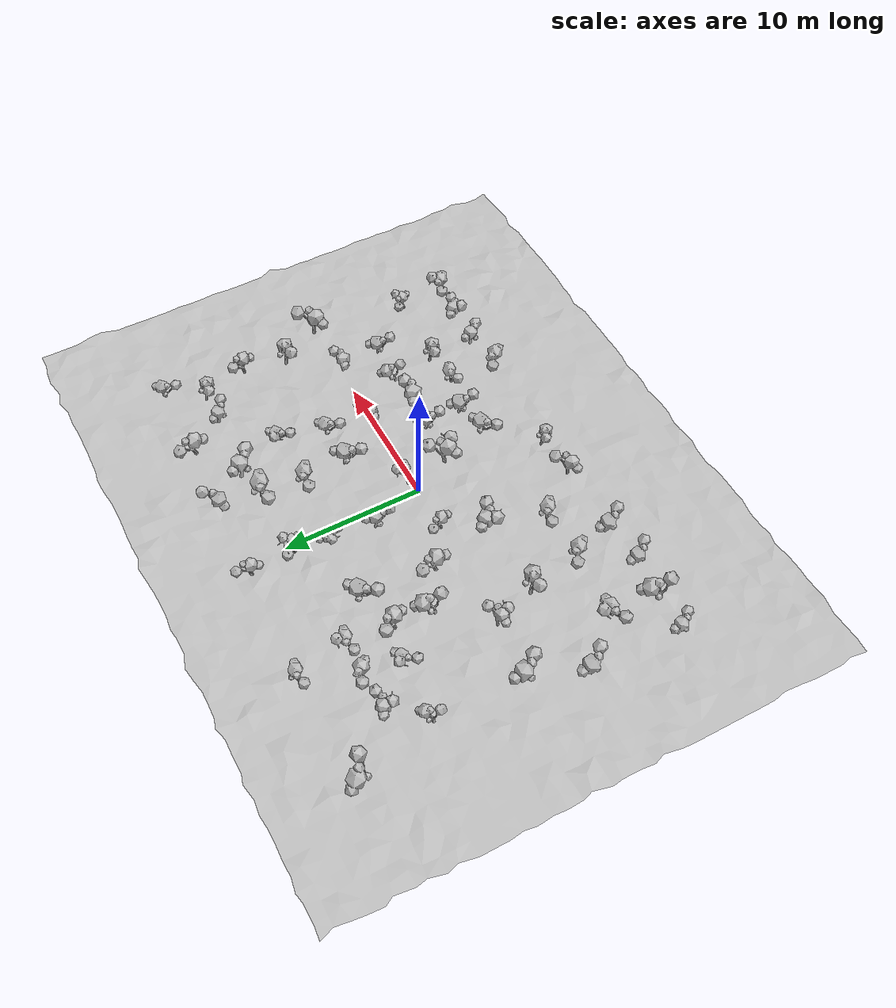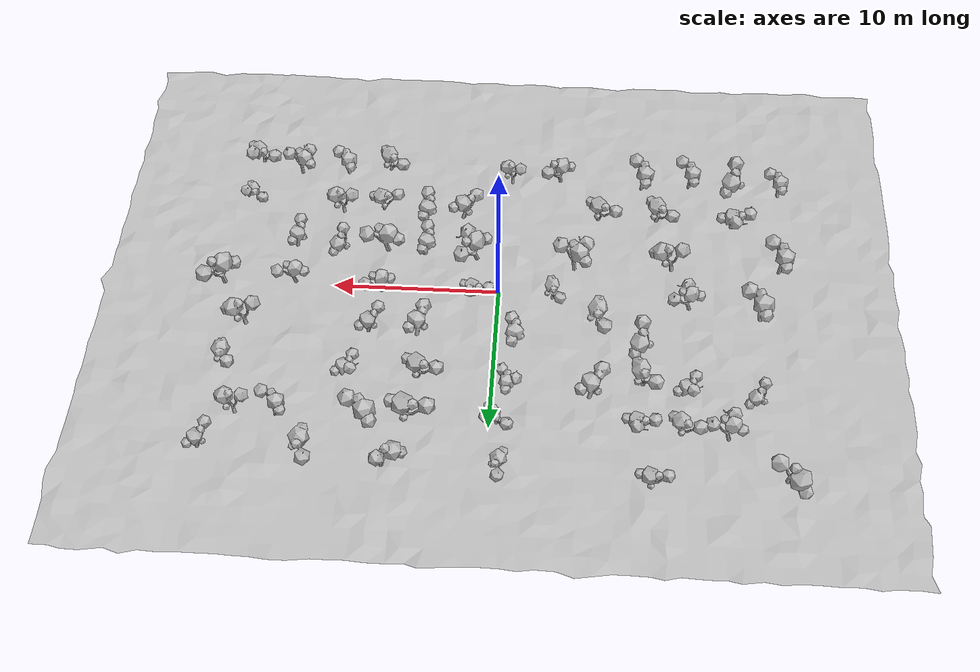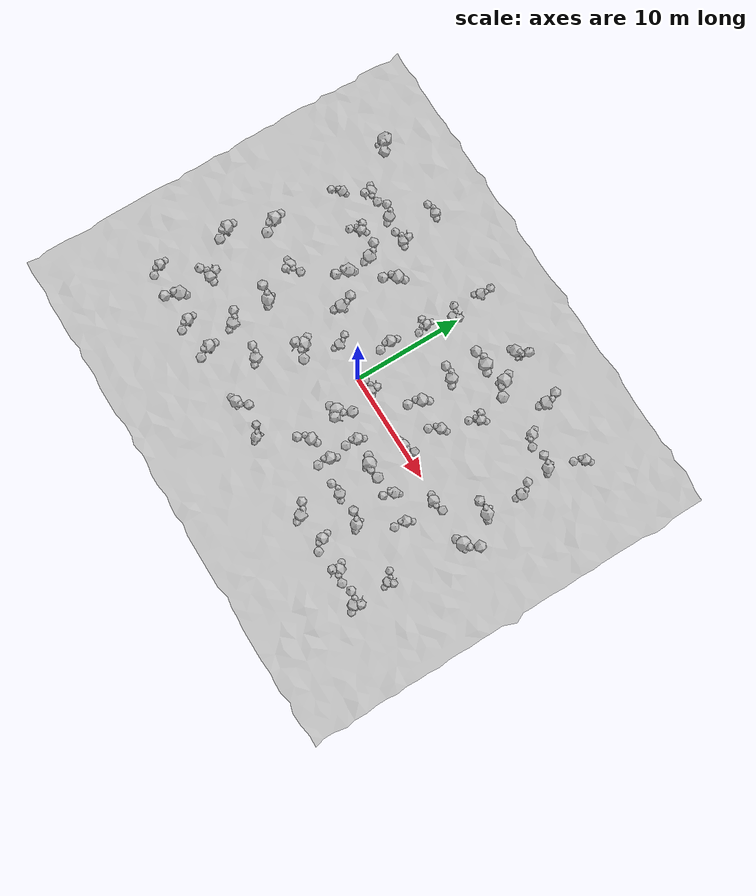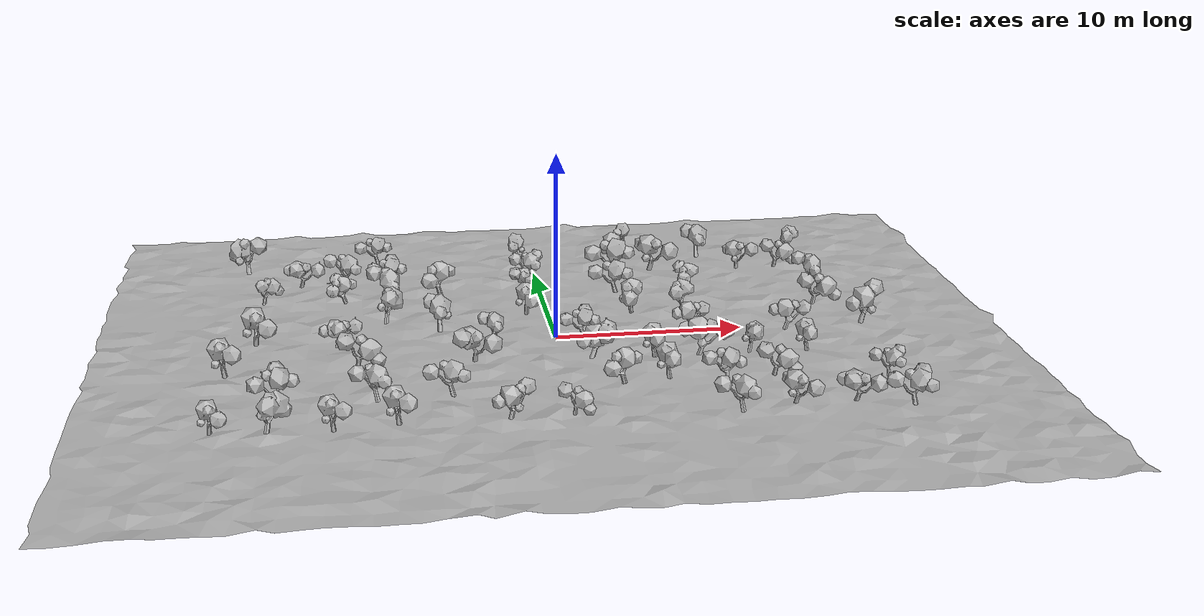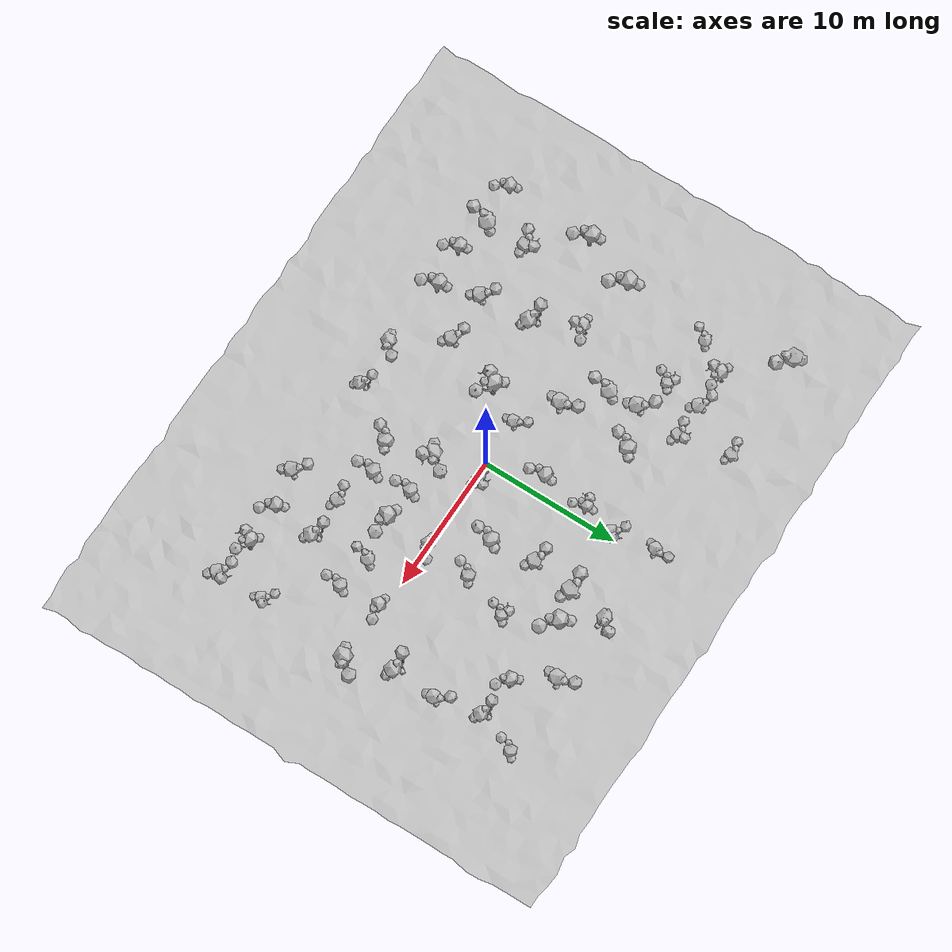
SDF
<?xml version='1.0' encoding='ASCII'?>
<sdf version='1.4'>
  <world name='procedural_orchard'>

    <spherical_coordinates>
      <surface_model>EARTH_WGS84</surface_model>
      <latitude_deg>37.335</latitude_deg>
      <longitude_deg>-121.881</longitude_deg>
      <elevation>0.0</elevation>
      <heading_deg>0</heading_deg>
    </spherical_coordinates>

    <physics type='ode'>
      <max_step_size>0.003</max_step_size>
      <real_time_factor>1.0</real_time_factor>
      <gravity>0 0 -9.8</gravity>
    </physics>
    <plugin name='gz::sim::systems::Physics' filename='libgz-sim-physics-system.so'/>
    <plugin name='gz::sim::systems::UserCommands' filename='libgz-sim-user-commands-system.so'/>
    <plugin name='gz::sim::systems::SceneBroadcaster' filename='libgz-sim-scene-broadcaster-system.so'/>
    <plugin name='gz::sim::systems::Sensors' filename='libgz-sim-sensors-system.so'>
      <render_engine>ogre2</render_engine>
    </plugin>
    <plugin name='gz::sim::systems::Imu' filename='libgz-sim-imu-system.so'/>
    <plugin name='gz::sim::systems::NavSat' filename='libgz-sim-navsat-system.so'/>
    <scene>
      <ambient>1 1 1 1</ambient>
      <background>0.3 0.7 0.9 1</background>
      <shadows>1</shadows>
      <sky><clouds><speed>12</speed></clouds></sky>
    </scene>
    <light name='sun' type='directional'>
      <cast_shadows>1</cast_shadows>
      <pose>0 0 10 0 -0 0</pose>
      <diffuse>1.0 1.0 1.0 1</diffuse>
      <specular>0.2 0.2 0.2 1</specular>
      <direction>-0.5 0.5 -1.0</direction>
    </light>

    <model name='orchard_ground'>
      <static>true</static>
      <pose>0 0 0 0 0 0</pose>
      <link name='link'>
        <collision name='col'><geometry><mesh><uri>model://orchard/orchard_world.dae</uri></mesh></geometry></collision>
        <visual name='vis'><geometry><mesh><uri>model://orchard/orchard_world.dae</uri></mesh></geometry></visual>
      </link>
    </model>

    <model name='tree_0'>
      <static>true</static>
      <pose>13.450 -10.100 0 0 0 0.759</pose>
      <link name='link'>
        <visual name='visual'>
          <geometry><mesh>
            <uri>model://orchard/orchard_tree_5.dae</uri>
            <scale>1.423 1.423 1.423</scale>
          </mesh></geometry>
        </visual>
        <collision name='trunk_collision'>
          <pose>0 0 0.5 0 0 0</pose>
          <geometry>
            <cylinder>
              <radius>0.2</radius>
              <length>1.0</length>
            </cylinder>
          </geometry>
        </collision>
      </link>
    </model>

    <model name='tree_1'>
      <static>true</static>
      <pose>7.350 -10.000 0 0 0 4.706</pose>
      <link name='link'>
        <visual name='visual'>
          <geometry><mesh>
            <uri>model://orchard/orchard_tree_1.dae</uri>
            <scale>1.448 1.448 1.448</scale>
          </mesh></geometry>
        </visual>
        <collision name='trunk_collision'>
          <pose>0 0 0.5 0 0 0</pose>
          <geometry>
            <cylinder>
              <radius>0.2</radius>
              <length>1.0</length>
            </cylinder>
          </geometry>
        </collision>
      </link>
    </model>

    <model name='tree_3'>
      <static>true</static>
      <pose>15.850 -10.200 0 0 0 3.896</pose>
      <link name='link'>
        <visual name='visual'>
          <geometry><mesh>
            <uri>model://orchard/orchard_tree_5.dae</uri>
            <scale>1.456 1.456 1.456</scale>
          </mesh></geometry>
        </visual>
        <collision name='trunk_collision'>
          <pose>0 0 0.5 0 0 0</pose>
          <geometry>
            <cylinder>
              <radius>0.2</radius>
              <length>1.0</length>
            </cylinder>
          </geometry>
        </collision>
      </link>
    </model>

    <model name='tree_4'>
      <static>true</static>
      <pose>-11.750 -10.000 0 0 0 5.970</pose>
      <link name='link'>
        <visual name='visual'>
          <geometry><mesh>
            <uri>model://orchard/orchard_tree_4.dae</uri>
            <scale>1.395 1.395 1.395</scale>
          </mesh></geometry>
        </visual>
        <collision name='trunk_collision'>
          <pose>0 0 0.5 0 0 0</pose>
          <geometry>
            <cylinder>
              <radius>0.2</radius>
              <length>1.0</length>
            </cylinder>
          </geometry>
        </collision>
      </link>
    </model>

    <model name='tree_5'>
      <static>true</static>
      <pose>10.450 -10.100 0 0 0 1.365</pose>
      <link name='link'>
        <visual name='visual'>
          <geometry><mesh>
            <uri>model://orchard/orchard_tree_1.dae</uri>
            <scale>1.397 1.397 1.397</scale>
          </mesh></geometry>
        </visual>
        <collision name='trunk_collision'>
          <pose>0 0 0.5 0 0 0</pose>
          <geometry>
            <cylinder>
              <radius>0.2</radius>
              <length>1.0</length>
            </cylinder>
          </geometry>
        </collision>
      </link>
    </model>

    <model name='tree_7'>
      <static>true</static>
      <pose>-0.350 -9.700 0 0 0 4.130</pose>
      <link name='link'>
        <visual name='visual'>
          <geometry><mesh>
            <uri>model://orchard/orchard_tree_3.dae</uri>
            <scale>1.257 1.257 1.257</scale>
          </mesh></geometry>
        </visual>
        <collision name='trunk_collision'>
          <pose>0 0 0.5 0 0 0</pose>
          <geometry>
            <cylinder>
              <radius>0.2</radius>
              <length>1.0</length>
            </cylinder>
          </geometry>
        </collision>
      </link>
    </model>

    <model name='tree_8'>
      <static>true</static>
      <pose>-14.550 -9.700 0 0 0 6.032</pose>
      <link name='link'>
        <visual name='visual'>
          <geometry><mesh>
            <uri>model://orchard/orchard_tree_3.dae</uri>
            <scale>1.661 1.661 1.661</scale>
          </mesh></geometry>
        </visual>
        <collision name='trunk_collision'>
          <pose>0 0 0.5 0 0 0</pose>
          <geometry>
            <cylinder>
              <radius>0.2</radius>
              <length>1.0</length>
            </cylinder>
          </geometry>
        </collision>
      </link>
    </model>

    <model name='tree_9'>
      <static>true</static>
      <pose>-17.250 -9.700 0 0 0 1.209</pose>
      <link name='link'>
        <visual name='visual'>
          <geometry><mesh>
            <uri>model://orchard/orchard_tree_1.dae</uri>
            <scale>1.330 1.330 1.330</scale>
          </mesh></geometry>
        </visual>
        <collision name='trunk_collision'>
          <pose>0 0 0.5 0 0 0</pose>
          <geometry>
            <cylinder>
              <radius>0.2</radius>
              <length>1.0</length>
            </cylinder>
          </geometry>
        </collision>
      </link>
    </model>

    <model name='tree_10'>
      <static>true</static>
      <pose>-3.250 -9.800 0 0 0 1.377</pose>
      <link name='link'>
        <visual name='visual'>
          <geometry><mesh>
            <uri>model://orchard/orchard_tree_4.dae</uri>
            <scale>1.441 1.441 1.441</scale>
          </mesh></geometry>
        </visual>
        <collision name='trunk_collision'>
          <pose>0 0 0.5 0 0 0</pose>
          <geometry>
            <cylinder>
              <radius>0.2</radius>
              <length>1.0</length>
            </cylinder>
          </geometry>
        </collision>
      </link>
    </model>

    <model name='tree_11'>
      <static>true</static>
      <pose>-8.750 -9.700 0 0 0 5.846</pose>
      <link name='link'>
        <visual name='visual'>
          <geometry><mesh>
            <uri>model://orchard/orchard_tree_4.dae</uri>
            <scale>1.516 1.516 1.516</scale>
          </mesh></geometry>
        </visual>
        <collision name='trunk_collision'>
          <pose>0 0 0.5 0 0 0</pose>
          <geometry>
            <cylinder>
              <radius>0.2</radius>
              <length>1.0</length>
            </cylinder>
          </geometry>
        </collision>
      </link>
    </model>

    <model name='tree_12'>
      <static>true</static>
      <pose>15.850 -6.800 0 0 0 3.561</pose>
      <link name='link'>
        <visual name='visual'>
          <geometry><mesh>
            <uri>model://orchard/orchard_tree_5.dae</uri>
            <scale>1.180 1.180 1.180</scale>
          </mesh></geometry>
        </visual>
        <collision name='trunk_collision'>
          <pose>0 0 0.5 0 0 0</pose>
          <geometry>
            <cylinder>
              <radius>0.2</radius>
              <length>1.0</length>
            </cylinder>
          </geometry>
        </collision>
      </link>
    </model>

    <model name='tree_13'>
      <static>true</static>
      <pose>2.250 -6.500 0 0 0 6.213</pose>
      <link name='link'>
        <visual name='visual'>
          <geometry><mesh>
            <uri>model://orchard/orchard_tree_1.dae</uri>
            <scale>1.491 1.491 1.491</scale>
          </mesh></geometry>
        </visual>
        <collision name='trunk_collision'>
          <pose>0 0 0.5 0 0 0</pose>
          <geometry>
            <cylinder>
              <radius>0.2</radius>
              <length>1.0</length>
            </cylinder>
          </geometry>
        </collision>
      </link>
    </model>

    <model name='tree_14'>
      <static>true</static>
      <pose>10.250 -6.500 0 0 0 4.363</pose>
      <link name='link'>
        <visual name='visual'>
          <geometry><mesh>
            <uri>model://orchard/orchard_tree_3.dae</uri>
            <scale>1.434 1.434 1.434</scale>
          </mesh></geometry>
        </visual>
        <collision name='trunk_collision'>
          <pose>0 0 0.5 0 0 0</pose>
          <geometry>
            <cylinder>
              <radius>0.2</radius>
              <length>1.0</length>
            </cylinder>
          </geometry>
        </collision>
      </link>
    </model>

    <model name='tree_15'>
      <static>true</static>
      <pose>7.550 -6.600 0 0 0 3.894</pose>
      <link name='link'>
        <visual name='visual'>
          <geometry><mesh>
            <uri>model://orchard/orchard_tree_4.dae</uri>
            <scale>1.333 1.333 1.333</scale>
          </mesh></geometry>
        </visual>
        <collision name='trunk_collision'>
          <pose>0 0 0.5 0 0 0</pose>
          <geometry>
            <cylinder>
              <radius>0.2</radius>
              <length>1.0</length>
            </cylinder>
          </geometry>
        </collision>
      </link>
    </model>

    <model name='tree_16'>
      <static>true</static>
      <pose>-9.850 -6.400 0 0 0 4.745</pose>
      <link name='link'>
        <visual name='visual'>
          <geometry><mesh>
            <uri>model://orchard/orchard_tree_1.dae</uri>
            <scale>1.465 1.465 1.465</scale>
          </mesh></geometry>
        </visual>
        <collision name='trunk_collision'>
          <pose>0 0 0.5 0 0 0</pose>
          <geometry>
            <cylinder>
              <radius>0.2</radius>
              <length>1.0</length>
            </cylinder>
          </geometry>
        </collision>
      </link>
    </model>

    <model name='tree_17'>
      <static>true</static>
      <pose>4.750 -6.000 0 0 0 5.396</pose>
      <link name='link'>
        <visual name='visual'>
          <geometry><mesh>
            <uri>model://orchard/orchard_tree_4.dae</uri>
            <scale>1.456 1.456 1.456</scale>
          </mesh></geometry>
        </visual>
        <collision name='trunk_collision'>
          <pose>0 0 0.5 0 0 0</pose>
          <geometry>
            <cylinder>
              <radius>0.2</radius>
              <length>1.0</length>
            </cylinder>
          </geometry>
        </collision>
      </link>
    </model>

    <model name='tree_18'>
      <static>true</static>
      <pose>-6.250 -6.400 0 0 0 5.059</pose>
      <link name='link'>
        <visual name='visual'>
          <geometry><mesh>
            <uri>model://orchard/orchard_tree_1.dae</uri>
            <scale>1.430 1.430 1.430</scale>
          </mesh></geometry>
        </visual>
        <collision name='trunk_collision'>
          <pose>0 0 0.5 0 0 0</pose>
          <geometry>
            <cylinder>
              <radius>0.2</radius>
              <length>1.0</length>
            </cylinder>
          </geometry>
        </collision>
      </link>
    </model>

    <model name='tree_19'>
      <static>true</static>
      <pose>-14.650 -6.200 0 0 0 4.654</pose>
      <link name='link'>
        <visual name='visual'>
          <geometry><mesh>
            <uri>model://orchard/orchard_tree_5.dae</uri>
            <scale>1.486 1.486 1.486</scale>
          </mesh></geometry>
        </visual>
        <collision name='trunk_collision'>
          <pose>0 0 0.5 0 0 0</pose>
          <geometry>
            <cylinder>
              <radius>0.2</radius>
              <length>1.0</length>
            </cylinder>
          </geometry>
        </collision>
      </link>
    </model>

    <model name='tree_20'>
      <static>true</static>
      <pose>7.450 -3.300 0 0 0 2.180</pose>
      <link name='link'>
        <visual name='visual'>
          <geometry><mesh>
            <uri>model://orchard/orchard_tree_1.dae</uri>
            <scale>1.686 1.686 1.686</scale>
          </mesh></geometry>
        </visual>
        <collision name='trunk_collision'>
          <pose>0 0 0.5 0 0 0</pose>
          <geometry>
            <cylinder>
              <radius>0.2</radius>
              <length>1.0</length>
            </cylinder>
          </geometry>
        </collision>
      </link>
    </model>

    <model name='tree_21'>
      <static>true</static>
      <pose>4.550 -3.200 0 0 0 5.376</pose>
      <link name='link'>
        <visual name='visual'>
          <geometry><mesh>
            <uri>model://orchard/orchard_tree_4.dae</uri>
            <scale>1.409 1.409 1.409</scale>
          </mesh></geometry>
        </visual>
        <collision name='trunk_collision'>
          <pose>0 0 0.5 0 0 0</pose>
          <geometry>
            <cylinder>
              <radius>0.2</radius>
              <length>1.0</length>
            </cylinder>
          </geometry>
        </collision>
      </link>
    </model>

    <model name='tree_22'>
      <static>true</static>
      <pose>12.550 -3.400 0 0 0 5.289</pose>
      <link name='link'>
        <visual name='visual'>
          <geometry><mesh>
            <uri>model://orchard/orchard_tree_4.dae</uri>
            <scale>1.340 1.340 1.340</scale>
          </mesh></geometry>
        </visual>
        <collision name='trunk_collision'>
          <pose>0 0 0.5 0 0 0</pose>
          <geometry>
            <cylinder>
              <radius>0.2</radius>
              <length>1.0</length>
            </cylinder>
          </geometry>
        </collision>
      </link>
    </model>

    <model name='tree_23'>
      <static>true</static>
      <pose>9.850 -3.100 0 0 0 6.024</pose>
      <link name='link'>
        <visual name='visual'>
          <geometry><mesh>
            <uri>model://orchard/orchard_tree_3.dae</uri>
            <scale>1.308 1.308 1.308</scale>
          </mesh></geometry>
        </visual>
        <collision name='trunk_collision'>
          <pose>0 0 0.5 0 0 0</pose>
          <geometry>
            <cylinder>
              <radius>0.2</radius>
              <length>1.0</length>
            </cylinder>
          </geometry>
        </collision>
      </link>
    </model>

    <model name='tree_24'>
      <static>true</static>
      <pose>1.950 -2.800 0 0 0 2.045</pose>
      <link name='link'>
        <visual name='visual'>
          <geometry><mesh>
            <uri>model://orchard/orchard_tree_5.dae</uri>
            <scale>1.669 1.669 1.669</scale>
          </mesh></geometry>
        </visual>
        <collision name='trunk_collision'>
          <pose>0 0 0.5 0 0 0</pose>
          <geometry>
            <cylinder>
              <radius>0.2</radius>
              <length>1.0</length>
            </cylinder>
          </geometry>
        </collision>
      </link>
    </model>

    <model name='tree_25'>
      <static>true</static>
      <pose>-17.150 -3.000 0 0 0 5.923</pose>
      <link name='link'>
        <visual name='visual'>
          <geometry><mesh>
            <uri>model://orchard/orchard_tree_4.dae</uri>
            <scale>1.598 1.598 1.598</scale>
          </mesh></geometry>
        </visual>
        <collision name='trunk_collision'>
          <pose>0 0 0.5 0 0 0</pose>
          <geometry>
            <cylinder>
              <radius>0.2</radius>
              <length>1.0</length>
            </cylinder>
          </geometry>
        </collision>
      </link>
    </model>

    <model name='tree_26'>
      <static>true</static>
      <pose>-4.450 -2.800 0 0 0 0.602</pose>
      <link name='link'>
        <visual name='visual'>
          <geometry><mesh>
            <uri>model://orchard/orchard_tree_5.dae</uri>
            <scale>1.650 1.650 1.650</scale>
          </mesh></geometry>
        </visual>
        <collision name='trunk_collision'>
          <pose>0 0 0.5 0 0 0</pose>
          <geometry>
            <cylinder>
              <radius>0.2</radius>
              <length>1.0</length>
            </cylinder>
          </geometry>
        </collision>
      </link>
    </model>

    <model name='tree_27'>
      <static>true</static>
      <pose>-10.350 -2.800 0 0 0 4.507</pose>
      <link name='link'>
        <visual name='visual'>
          <geometry><mesh>
            <uri>model://orchard/orchard_tree_3.dae</uri>
            <scale>1.579 1.579 1.579</scale>
          </mesh></geometry>
        </visual>
        <collision name='trunk_collision'>
          <pose>0 0 0.5 0 0 0</pose>
          <geometry>
            <cylinder>
              <radius>0.2</radius>
              <length>1.0</length>
            </cylinder>
          </geometry>
        </collision>
      </link>
    </model>

    <model name='tree_28'>
      <static>true</static>
      <pose>12.750 -0.300 0 0 0 2.391</pose>
      <link name='link'>
        <visual name='visual'>
          <geometry><mesh>
            <uri>model://orchard/orchard_tree_1.dae</uri>
            <scale>1.358 1.358 1.358</scale>
          </mesh></geometry>
        </visual>
        <collision name='trunk_collision'>
          <pose>0 0 0.5 0 0 0</pose>
          <geometry>
            <cylinder>
              <radius>0.2</radius>
              <length>1.0</length>
            </cylinder>
          </geometry>
        </collision>
      </link>
    </model>

    <model name='tree_29'>
      <static>true</static>
      <pose>16.950 -0.000 0 0 0 1.486</pose>
      <link name='link'>
        <visual name='visual'>
          <geometry><mesh>
            <uri>model://orchard/orchard_tree_4.dae</uri>
            <scale>1.734 1.734 1.734</scale>
          </mesh></geometry>
        </visual>
        <collision name='trunk_collision'>
          <pose>0 0 0.5 0 0 0</pose>
          <geometry>
            <cylinder>
              <radius>0.2</radius>
              <length>1.0</length>
            </cylinder>
          </geometry>
        </collision>
      </link>
    </model>

    <model name='tree_30'>
      <static>true</static>
      <pose>-11.150 0.300 0 0 0 1.532</pose>
      <link name='link'>
        <visual name='visual'>
          <geometry><mesh>
            <uri>model://orchard/orchard_tree_5.dae</uri>
            <scale>1.353 1.353 1.353</scale>
          </mesh></geometry>
        </visual>
        <collision name='trunk_collision'>
          <pose>0 0 0.5 0 0 0</pose>
          <geometry>
            <cylinder>
              <radius>0.2</radius>
              <length>1.0</length>
            </cylinder>
          </geometry>
        </collision>
      </link>
    </model>

    <model name='tree_31'>
      <static>true</static>
      <pose>7.450 0.200 0 0 0 2.683</pose>
      <link name='link'>
        <visual name='visual'>
          <geometry><mesh>
            <uri>model://orchard/orchard_tree_1.dae</uri>
            <scale>1.320 1.320 1.320</scale>
          </mesh></geometry>
        </visual>
        <collision name='trunk_collision'>
          <pose>0 0 0.5 0 0 0</pose>
          <geometry>
            <cylinder>
              <radius>0.2</radius>
              <length>1.0</length>
            </cylinder>
          </geometry>
        </collision>
      </link>
    </model>

    <model name='tree_32'>
      <static>true</static>
      <pose>-3.350 0.400 0 0 0 4.305</pose>
      <link name='link'>
        <visual name='visual'>
          <geometry><mesh>
            <uri>model://orchard/orchard_tree_1.dae</uri>
            <scale>1.231 1.231 1.231</scale>
          </mesh></geometry>
        </visual>
        <collision name='trunk_collision'>
          <pose>0 0 0.5 0 0 0</pose>
          <geometry>
            <cylinder>
              <radius>0.2</radius>
              <length>1.0</length>
            </cylinder>
          </geometry>
        </collision>
      </link>
    </model>

    <model name='tree_33'>
      <static>true</static>
      <pose>1.250 0.400 0 0 0 4.267</pose>
      <link name='link'>
        <visual name='visual'>
          <geometry><mesh>
            <uri>model://orchard/orchard_tree_5.dae</uri>
            <scale>1.257 1.257 1.257</scale>
          </mesh></geometry>
        </visual>
        <collision name='trunk_collision'>
          <pose>0 0 0.5 0 0 0</pose>
          <geometry>
            <cylinder>
              <radius>0.2</radius>
              <length>1.0</length>
            </cylinder>
          </geometry>
        </collision>
      </link>
    </model>

    <model name='tree_34'>
      <static>true</static>
      <pose>-15.550 0.700 0 0 0 1.207</pose>
      <link name='link'>
        <visual name='visual'>
          <geometry><mesh>
            <uri>model://orchard/orchard_tree_1.dae</uri>
            <scale>1.721 1.721 1.721</scale>
          </mesh></geometry>
        </visual>
        <collision name='trunk_collision'>
          <pose>0 0 0.5 0 0 0</pose>
          <geometry>
            <cylinder>
              <radius>0.2</radius>
              <length>1.0</length>
            </cylinder>
          </geometry>
        </collision>
      </link>
    </model>

    <model name='tree_36'>
      <static>true</static>
      <pose>15.050 3.000 0 0 0 4.694</pose>
      <link name='link'>
        <visual name='visual'>
          <geometry><mesh>
            <uri>model://orchard/orchard_tree_3.dae</uri>
            <scale>1.544 1.544 1.544</scale>
          </mesh></geometry>
        </visual>
        <collision name='trunk_collision'>
          <pose>0 0 0.5 0 0 0</pose>
          <geometry>
            <cylinder>
              <radius>0.2</radius>
              <length>1.0</length>
            </cylinder>
          </geometry>
        </collision>
      </link>
    </model>

    <model name='tree_37'>
      <static>true</static>
      <pose>7.350 3.300 0 0 0 4.835</pose>
      <link name='link'>
        <visual name='visual'>
          <geometry><mesh>
            <uri>model://orchard/orchard_tree_4.dae</uri>
            <scale>1.339 1.339 1.339</scale>
          </mesh></geometry>
        </visual>
        <collision name='trunk_collision'>
          <pose>0 0 0.5 0 0 0</pose>
          <geometry>
            <cylinder>
              <radius>0.2</radius>
              <length>1.0</length>
            </cylinder>
          </geometry>
        </collision>
      </link>
    </model>

    <model name='tree_39'>
      <static>true</static>
      <pose>-8.650 3.700 0 0 0 6.134</pose>
      <link name='link'>
        <visual name='visual'>
          <geometry><mesh>
            <uri>model://orchard/orchard_tree_3.dae</uri>
            <scale>1.580 1.580 1.580</scale>
          </mesh></geometry>
        </visual>
        <collision name='trunk_collision'>
          <pose>0 0 0.5 0 0 0</pose>
          <geometry>
            <cylinder>
              <radius>0.2</radius>
              <length>1.0</length>
            </cylinder>
          </geometry>
        </collision>
      </link>
    </model>

    <model name='tree_40'>
      <static>true</static>
      <pose>4.450 3.000 0 0 0 0.391</pose>
      <link name='link'>
        <visual name='visual'>
          <geometry><mesh>
            <uri>model://orchard/orchard_tree_1.dae</uri>
            <scale>1.546 1.546 1.546</scale>
          </mesh></geometry>
        </visual>
        <collision name='trunk_collision'>
          <pose>0 0 0.5 0 0 0</pose>
          <geometry>
            <cylinder>
              <radius>0.2</radius>
              <length>1.0</length>
            </cylinder>
          </geometry>
        </collision>
      </link>
    </model>

    <model name='tree_41'>
      <static>true</static>
      <pose>-6.050 2.400 0 0 0 4.103</pose>
      <link name='link'>
        <visual name='visual'>
          <geometry><mesh>
            <uri>model://orchard/orchard_tree_1.dae</uri>
            <scale>1.569 1.569 1.569</scale>
          </mesh></geometry>
        </visual>
        <collision name='trunk_collision'>
          <pose>0 0 0.5 0 0 0</pose>
          <geometry>
            <cylinder>
              <radius>0.2</radius>
              <length>1.0</length>
            </cylinder>
          </geometry>
        </collision>
      </link>
    </model>

    <model name='tree_42'>
      <static>true</static>
      <pose>-1.150 3.500 0 0 0 0.816</pose>
      <link name='link'>
        <visual name='visual'>
          <geometry><mesh>
            <uri>model://orchard/orchard_tree_1.dae</uri>
            <scale>1.436 1.436 1.436</scale>
          </mesh></geometry>
        </visual>
        <collision name='trunk_collision'>
          <pose>0 0 0.5 0 0 0</pose>
          <geometry>
            <cylinder>
              <radius>0.2</radius>
              <length>1.0</length>
            </cylinder>
          </geometry>
        </collision>
      </link>
    </model>

    <model name='tree_43'>
      <static>true</static>
      <pose>-8.650 6.600 0 0 0 2.923</pose>
      <link name='link'>
        <visual name='visual'>
          <geometry><mesh>
            <uri>model://orchard/orchard_tree_4.dae</uri>
            <scale>1.569 1.569 1.569</scale>
          </mesh></geometry>
        </visual>
        <collision name='trunk_collision'>
          <pose>0 0 0.5 0 0 0</pose>
          <geometry>
            <cylinder>
              <radius>0.2</radius>
              <length>1.0</length>
            </cylinder>
          </geometry>
        </collision>
      </link>
    </model>

    <model name='tree_44'>
      <static>true</static>
      <pose>15.650 6.400 0 0 0 2.732</pose>
      <link name='link'>
        <visual name='visual'>
          <geometry><mesh>
            <uri>model://orchard/orchard_tree_4.dae</uri>
            <scale>1.390 1.390 1.390</scale>
          </mesh></geometry>
        </visual>
        <collision name='trunk_collision'>
          <pose>0 0 0.5 0 0 0</pose>
          <geometry>
            <cylinder>
              <radius>0.2</radius>
              <length>1.0</length>
            </cylinder>
          </geometry>
        </collision>
      </link>
    </model>

    <model name='tree_45'>
      <static>true</static>
      <pose>3.950 6.700 0 0 0 5.193</pose>
      <link name='link'>
        <visual name='visual'>
          <geometry><mesh>
            <uri>model://orchard/orchard_tree_1.dae</uri>
            <scale>1.501 1.501 1.501</scale>
          </mesh></geometry>
        </visual>
        <collision name='trunk_collision'>
          <pose>0 0 0.5 0 0 0</pose>
          <geometry>
            <cylinder>
              <radius>0.2</radius>
              <length>1.0</length>
            </cylinder>
          </geometry>
        </collision>
      </link>
    </model>

    <model name='tree_46'>
      <static>true</static>
      <pose>8.350 6.500 0 0 0 5.396</pose>
      <link name='link'>
        <visual name='visual'>
          <geometry><mesh>
            <uri>model://orchard/orchard_tree_5.dae</uri>
            <scale>1.257 1.257 1.257</scale>
          </mesh></geometry>
        </visual>
        <collision name='trunk_collision'>
          <pose>0 0 0.5 0 0 0</pose>
          <geometry>
            <cylinder>
              <radius>0.2</radius>
              <length>1.0</length>
            </cylinder>
          </geometry>
        </collision>
      </link>
    </model>

    <model name='tree_47'>
      <static>true</static>
      <pose>-11.350 6.900 0 0 0 5.230</pose>
      <link name='link'>
        <visual name='visual'>
          <geometry><mesh>
            <uri>model://orchard/orchard_tree_5.dae</uri>
            <scale>1.260 1.260 1.260</scale>
          </mesh></geometry>
        </visual>
        <collision name='trunk_collision'>
          <pose>0 0 0.5 0 0 0</pose>
          <geometry>
            <cylinder>
              <radius>0.2</radius>
              <length>1.0</length>
            </cylinder>
          </geometry>
        </collision>
      </link>
    </model>

    <model name='tree_48'>
      <static>true</static>
      <pose>-0.850 7.000 0 0 0 6.181</pose>
      <link name='link'>
        <visual name='visual'>
          <geometry><mesh>
            <uri>model://orchard/orchard_tree_5.dae</uri>
            <scale>1.222 1.222 1.222</scale>
          </mesh></geometry>
        </visual>
        <collision name='trunk_collision'>
          <pose>0 0 0.5 0 0 0</pose>
          <geometry>
            <cylinder>
              <radius>0.2</radius>
              <length>1.0</length>
            </cylinder>
          </geometry>
        </collision>
      </link>
    </model>

    <model name='tree_49'>
      <static>true</static>
      <pose>-5.950 7.100 0 0 0 0.110</pose>
      <link name='link'>
        <visual name='visual'>
          <geometry><mesh>
            <uri>model://orchard/orchard_tree_1.dae</uri>
            <scale>1.596 1.596 1.596</scale>
          </mesh></geometry>
        </visual>
        <collision name='trunk_collision'>
          <pose>0 0 0.5 0 0 0</pose>
          <geometry>
            <cylinder>
              <radius>0.2</radius>
              <length>1.0</length>
            </cylinder>
          </geometry>
        </collision>
      </link>
    </model>

    <model name='tree_50'>
      <static>true</static>
      <pose>-15.350 7.300 0 0 0 5.680</pose>
      <link name='link'>
        <visual name='visual'>
          <geometry><mesh>
            <uri>model://orchard/orchard_tree_3.dae</uri>
            <scale>1.226 1.226 1.226</scale>
          </mesh></geometry>
        </visual>
        <collision name='trunk_collision'>
          <pose>0 0 0.5 0 0 0</pose>
          <geometry>
            <cylinder>
              <radius>0.2</radius>
              <length>1.0</length>
            </cylinder>
          </geometry>
        </collision>
      </link>
    </model>

    <model name='tree_51'>
      <static>true</static>
      <pose>14.550 9.500 0 0 0 4.487</pose>
      <link name='link'>
        <visual name='visual'>
          <geometry><mesh>
            <uri>model://orchard/orchard_tree_3.dae</uri>
            <scale>1.390 1.390 1.390</scale>
          </mesh></geometry>
        </visual>
        <collision name='trunk_collision'>
          <pose>0 0 0.5 0 0 0</pose>
          <geometry>
            <cylinder>
              <radius>0.2</radius>
              <length>1.0</length>
            </cylinder>
          </geometry>
        </collision>
      </link>
    </model>

    <model name='tree_52'>
      <static>true</static>
      <pose>-13.250 9.600 0 0 0 1.105</pose>
      <link name='link'>
        <visual name='visual'>
          <geometry><mesh>
            <uri>model://orchard/orchard_tree_5.dae</uri>
            <scale>1.397 1.397 1.397</scale>
          </mesh></geometry>
        </visual>
        <collision name='trunk_collision'>
          <pose>0 0 0.5 0 0 0</pose>
          <geometry>
            <cylinder>
              <radius>0.2</radius>
              <length>1.0</length>
            </cylinder>
          </geometry>
        </collision>
      </link>
    </model>

    <model name='tree_53'>
      <static>true</static>
      <pose>4.350 9.700 0 0 0 5.381</pose>
      <link name='link'>
        <visual name='visual'>
          <geometry><mesh>
            <uri>model://orchard/orchard_tree_1.dae</uri>
            <scale>1.714 1.714 1.714</scale>
          </mesh></geometry>
        </visual>
        <collision name='trunk_collision'>
          <pose>0 0 0.5 0 0 0</pose>
          <geometry>
            <cylinder>
              <radius>0.2</radius>
              <length>1.0</length>
            </cylinder>
          </geometry>
        </collision>
      </link>
    </model>

    <model name='tree_54'>
      <static>true</static>
      <pose>-8.650 9.700 0 0 0 4.401</pose>
      <link name='link'>
        <visual name='visual'>
          <geometry><mesh>
            <uri>model://orchard/orchard_tree_5.dae</uri>
            <scale>1.322 1.322 1.322</scale>
          </mesh></geometry>
        </visual>
        <collision name='trunk_collision'>
          <pose>0 0 0.5 0 0 0</pose>
          <geometry>
            <cylinder>
              <radius>0.2</radius>
              <length>1.0</length>
            </cylinder>
          </geometry>
        </collision>
      </link>
    </model>

    <model name='tree_55'>
      <static>true</static>
      <pose>12.150 9.500 0 0 0 0.063</pose>
      <link name='link'>
        <visual name='visual'>
          <geometry><mesh>
            <uri>model://orchard/orchard_tree_4.dae</uri>
            <scale>1.349 1.349 1.349</scale>
          </mesh></geometry>
        </visual>
        <collision name='trunk_collision'>
          <pose>0 0 0.5 0 0 0</pose>
          <geometry>
            <cylinder>
              <radius>0.2</radius>
              <length>1.0</length>
            </cylinder>
          </geometry>
        </collision>
      </link>
    </model>

    <model name='tree_56'>
      <static>true</static>
      <pose>-10.950 9.900 0 0 0 3.398</pose>
      <link name='link'>
        <visual name='visual'>
          <geometry><mesh>
            <uri>model://orchard/orchard_tree_4.dae</uri>
            <scale>1.403 1.403 1.403</scale>
          </mesh></geometry>
        </visual>
        <collision name='trunk_collision'>
          <pose>0 0 0.5 0 0 0</pose>
          <geometry>
            <cylinder>
              <radius>0.2</radius>
              <length>1.0</length>
            </cylinder>
          </geometry>
        </collision>
      </link>
    </model>

    <model name='tree_57'>
      <static>true</static>
      <pose>7.250 9.800 0 0 0 1.529</pose>
      <link name='link'>
        <visual name='visual'>
          <geometry><mesh>
            <uri>model://orchard/orchard_tree_1.dae</uri>
            <scale>1.728 1.728 1.728</scale>
          </mesh></geometry>
        </visual>
        <collision name='trunk_collision'>
          <pose>0 0 0.5 0 0 0</pose>
          <geometry>
            <cylinder>
              <radius>0.2</radius>
              <length>1.0</length>
            </cylinder>
          </geometry>
        </collision>
      </link>
    </model>

    <model name='tree_58'>
      <static>true</static>
      <pose>-0.450 9.900 0 0 0 3.611</pose>
      <link name='link'>
        <visual name='visual'>
          <geometry><mesh>
            <uri>model://orchard/orchard_tree_5.dae</uri>
            <scale>1.286 1.286 1.286</scale>
          </mesh></geometry>
        </visual>
        <collision name='trunk_collision'>
          <pose>0 0 0.5 0 0 0</pose>
          <geometry>
            <cylinder>
              <radius>0.2</radius>
              <length>1.0</length>
            </cylinder>
          </geometry>
        </collision>
      </link>
    </model>

    <model name='tree_59'>
      <static>true</static>
      <pose>15.950 12.100 0 0 0 4.955</pose>
      <link name='link'>
        <visual name='visual'>
          <geometry><mesh>
            <uri>model://orchard/orchard_tree_4.dae</uri>
            <scale>1.267 1.267 1.267</scale>
          </mesh></geometry>
        </visual>
        <collision name='trunk_collision'>
          <pose>0 0 0.5 0 0 0</pose>
          <geometry>
            <cylinder>
              <radius>0.2</radius>
              <length>1.0</length>
            </cylinder>
          </geometry>
        </collision>
      </link>
    </model>

    <model name='tree_60'>
      <static>true</static>
      <pose>10.250 12.600 0 0 0 4.065</pose>
      <link name='link'>
        <visual name='visual'>
          <geometry><mesh>
            <uri>model://orchard/orchard_tree_1.dae</uri>
            <scale>1.540 1.540 1.540</scale>
          </mesh></geometry>
        </visual>
        <collision name='trunk_collision'>
          <pose>0 0 0.5 0 0 0</pose>
          <geometry>
            <cylinder>
              <radius>0.2</radius>
              <length>1.0</length>
            </cylinder>
          </geometry>
        </collision>
      </link>
    </model>

    <model name='tree_62'>
      <static>true</static>
      <pose>5.550 12.800 0 0 0 2.360</pose>
      <link name='link'>
        <visual name='visual'>
          <geometry><mesh>
            <uri>model://orchard/orchard_tree_3.dae</uri>
            <scale>1.469 1.469 1.469</scale>
          </mesh></geometry>
        </visual>
        <collision name='trunk_collision'>
          <pose>0 0 0.5 0 0 0</pose>
          <geometry>
            <cylinder>
              <radius>0.2</radius>
              <length>1.0</length>
            </cylinder>
          </geometry>
        </collision>
      </link>
    </model>

    <model name='tree_63'>
      <static>true</static>
      <pose>-0.650 13.100 0 0 0 3.766</pose>
      <link name='link'>
        <visual name='visual'>
          <geometry><mesh>
            <uri>model://orchard/orchard_tree_1.dae</uri>
            <scale>1.275 1.275 1.275</scale>
          </mesh></geometry>
        </visual>
        <collision name='trunk_collision'>
          <pose>0 0 0.5 0 0 0</pose>
          <geometry>
            <cylinder>
              <radius>0.2</radius>
              <length>1.0</length>
            </cylinder>
          </geometry>
        </collision>
      </link>
    </model>

    <model name='tree_64'>
      <static>true</static>
      <pose>-9.350 13.400 0 0 0 5.459</pose>
      <link name='link'>
        <visual name='visual'>
          <geometry><mesh>
            <uri>model://orchard/orchard_tree_1.dae</uri>
            <scale>1.279 1.279 1.279</scale>
          </mesh></geometry>
        </visual>
        <collision name='trunk_collision'>
          <pose>0 0 0.5 0 0 0</pose>
          <geometry>
            <cylinder>
              <radius>0.2</radius>
              <length>1.0</length>
            </cylinder>
          </geometry>
        </collision>
      </link>
    </model>

    <model name='tree_65'>
      <static>true</static>
      <pose>-16.650 12.800 0 0 0 0.978</pose>
      <link name='link'>
        <visual name='visual'>
          <geometry><mesh>
            <uri>model://orchard/orchard_tree_3.dae</uri>
            <scale>1.727 1.727 1.727</scale>
          </mesh></geometry>
        </visual>
        <collision name='trunk_collision'>
          <pose>0 0 0.5 0 0 0</pose>
          <geometry>
            <cylinder>
              <radius>0.2</radius>
              <length>1.0</length>
            </cylinder>
          </geometry>
        </collision>
      </link>
    </model>
  </world>
</sdf>
